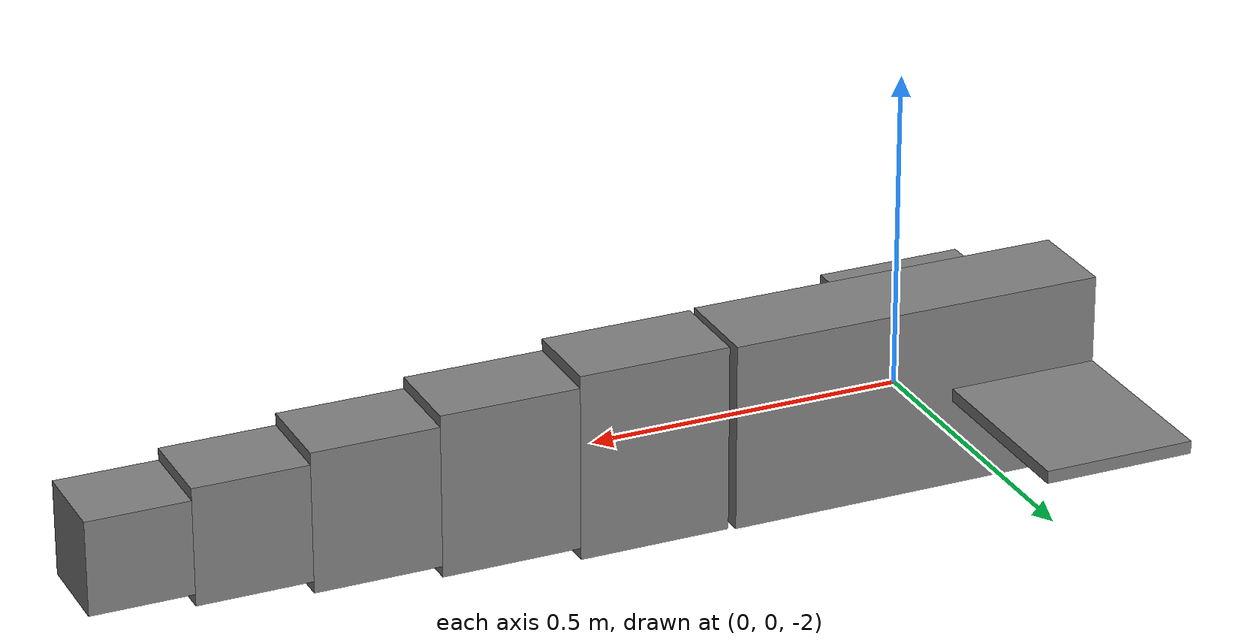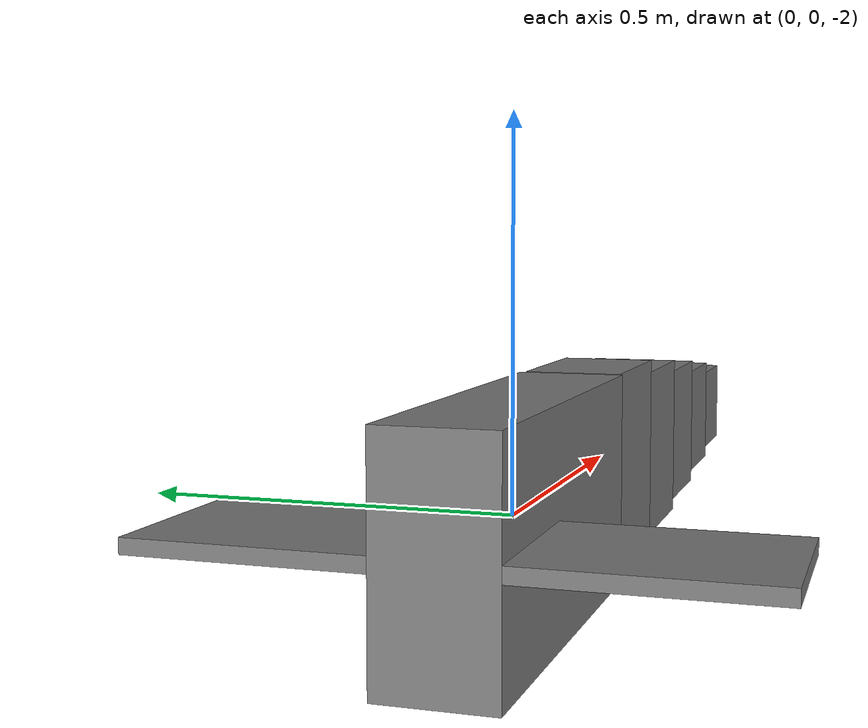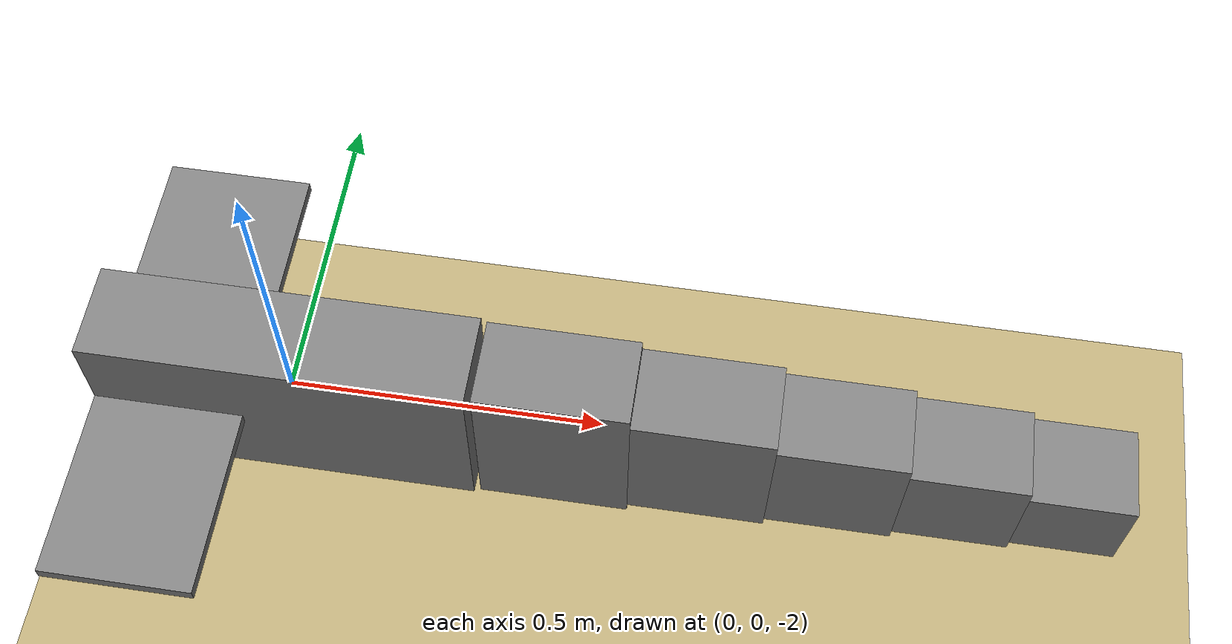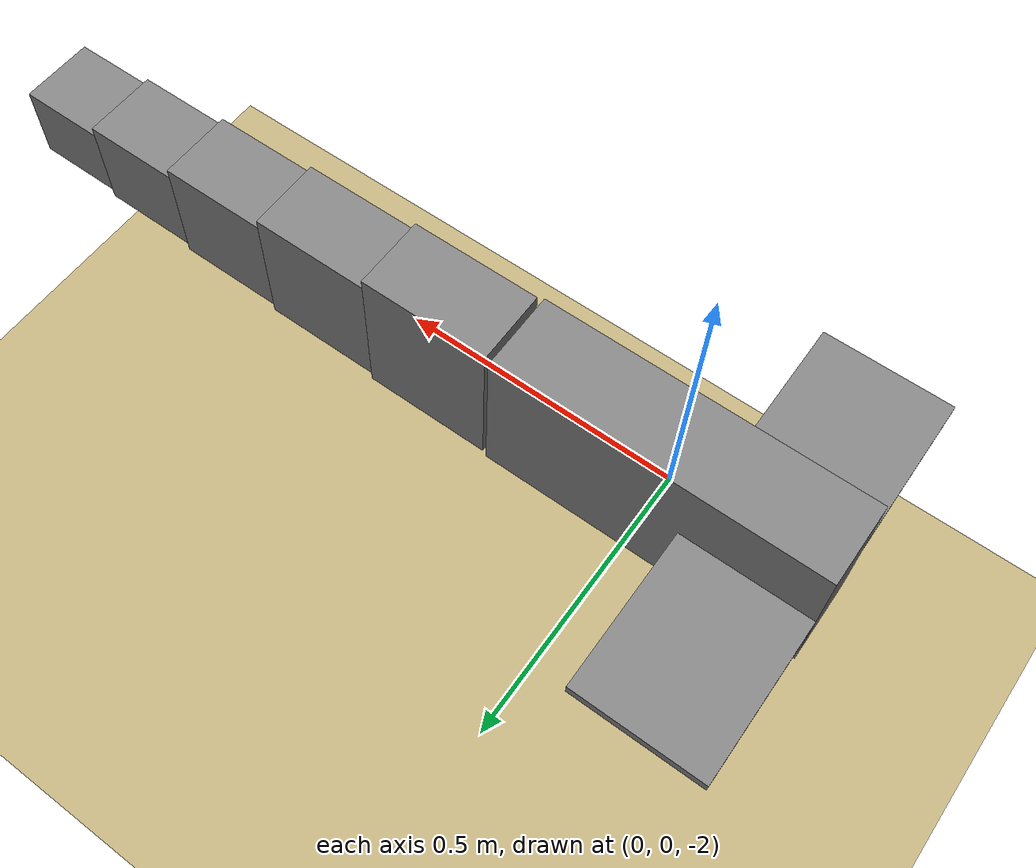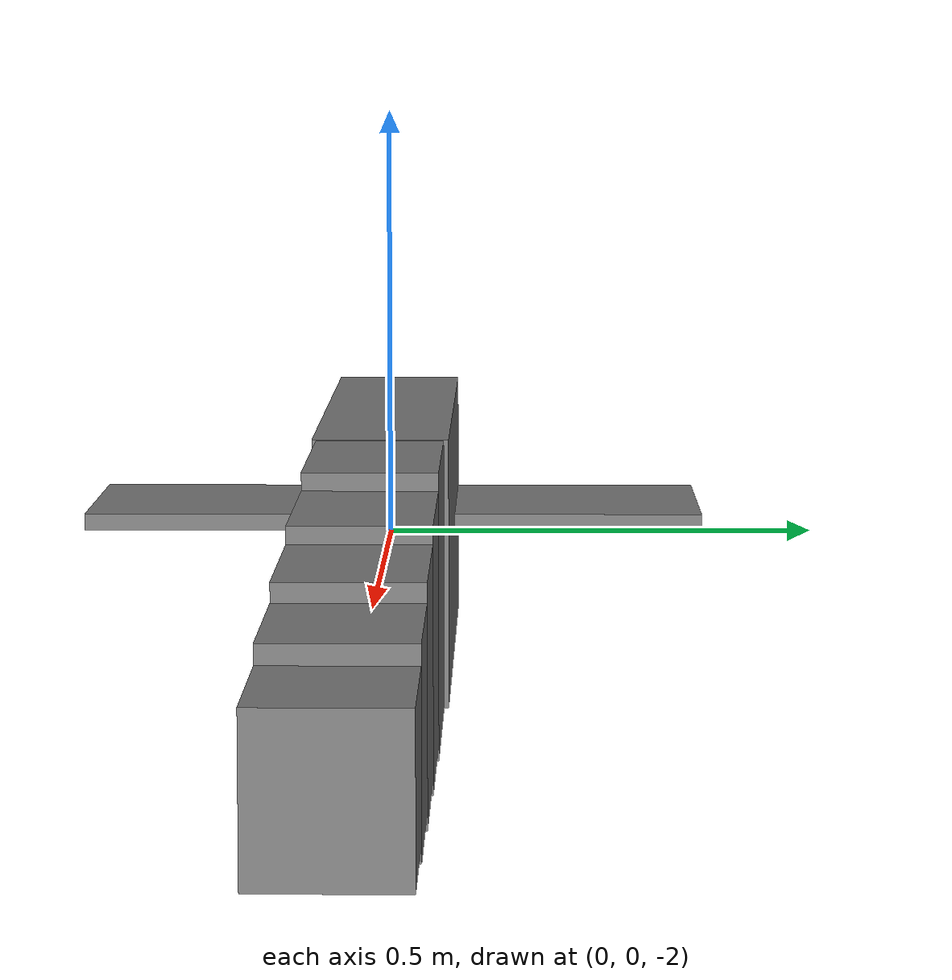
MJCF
<mujoco>
  <compiler angle="radian" autolimits="true"/>
  <option density="1000" viscosity="0.0009" timestep="0.002" integrator="implicitfast" gravity="0 0 -9.81"/>

  <default>
    <joint type="hinge" axis="0 0 1" range="-0.785 0.785" damping="0.5" armature="0.01"/>
    <geom fluidshape="ellipsoid" fluidcoef="0.5 0.25 1.5 1.0 1.0"/>
    <position kp="50" kv="2" ctrlrange="-0.785 0.785" forcerange="-10 10"/>
    <!-- no Kutta lift on the tail: MuJoCo's lift model turns side-to-side flapping into
         vertical force whenever the fish pitches, which flips it nose-down -->
    <default class="tail">
      <geom fluidcoef="0.5 0.25 1.5 0 1.0"/>
    </default>
  </default>

  <asset>
    <texture type="skybox" builtin="gradient" rgb1="0.15 0.45 0.6" rgb2="0.0 0.05 0.1"
      width="512" height="3072"/>
    <texture name="sand" type="2d" builtin="checker" rgb1="0.76 0.7 0.5" rgb2="0.7 0.64 0.45"
      width="512" height="512"/>
    <material name="seabed" texture="sand" texrepeat="10 10"/>
  </asset>

  <worldbody>
    <light pos="0 0 10" dir="0 0 -1" directional="true" diffuse="0.5 0.7 0.8"/>
    <geom name="seabed" type="plane" size="50 50 0.1" pos="0 0 -3" material="seabed"/>

    <body name="fish" pos="0 0 -2">
      <freejoint/>
      <geom type="box" size="0.3 0.075 0.15" mass="7"/>

      <body name="fin_1" pos="-0.18 0.075 0">
        <joint name="fin_joint_1" axis="0 1 0" range="-0.5 0.5"/>
        <geom type="box" size="0.12 0.15 0.01" pos="0 0.15 0" mass="0.1"/>
      </body>

      <body name="fin_2" pos="-0.18 -0.075 0">
        <joint name="fin_joint_2" axis="0 1 0" range="-0.5 0.5"/>
        <geom type="box" size="0.12 0.15 0.01" pos="0 -0.15 0" mass="0.1"/>
      </body>

      <body name="tail_1" pos="0.3 0 0" childclass="tail">
        <joint name="tail_joint_1"/>
        <geom type="box" size="0.120 0.07 0.15" pos="0.130 0 0" mass="0.5"/>

        <body name="tail_2" pos="0.240 0 0">
          <geom type="box" size="0.110 0.07 0.131" pos="0.120 0 0" mass="0.5"/>

          <body name="tail_3" pos="0.220 0 0">
            <joint name="tail_joint_3"/>
            <geom type="box" size="0.100 0.07 0.113" pos="0.110 0 0" mass="0.5"/>

            <body name="tail_4" pos="0.200 0 0">
              <geom type="box" size="0.090 0.07 0.094" pos="0.100 0 0" mass="0.5"/>

              <body name="tail_5" pos="0.180 0 0">
                <joint name="tail_joint_5"/>
                <geom type="box" size="0.080 0.07 0.075" pos="0.090 0 0" mass="0.5"/>
              </body>
            </body>
          </body>
        </body>
      </body>
    </body>
  </worldbody>

  <actuator>
    <position name="tail_servo_1" joint="tail_joint_1" kp="1000" forcerange="-150 150"/>
    <position name="tail_servo_3" joint="tail_joint_3" kp="1000" forcerange="-150 150"/>
    <position name="tail_servo_5" joint="tail_joint_5" kp="1000" forcerange="-150 150"/>
    <position name="fin_servo_1" joint="fin_joint_1" ctrlrange="-0.5 0.5"/>
    <position name="fin_servo_2" joint="fin_joint_2" ctrlrange="-0.5 0.5"/>
  </actuator>

</mujoco>
